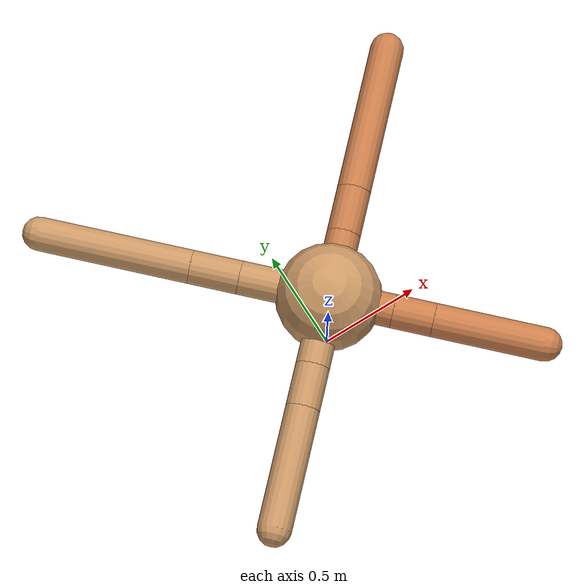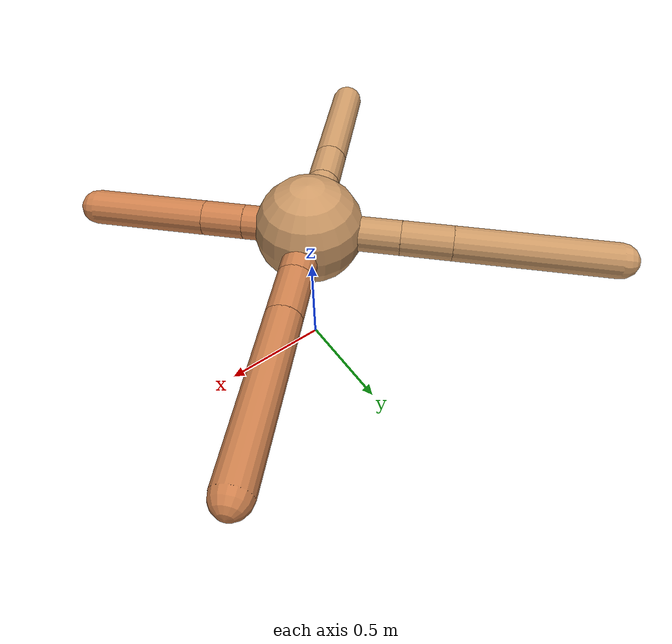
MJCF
<mujoco model="ant">
  <compiler angle="degree" coordinate="local" inertiafromgeom="true" />
  <option integrator="RK4" timestep="0.01" />
  <custom>
    <numeric data="0.0 0.0 0.55 1.0 0.0 0.0 0.0 0.0 1.0 0.0 -1.0 0.0 -1.0 0.0 1.0" name="init_qpos" />
  </custom>
  <default>
    <joint armature="1" damping="1" limited="true" />
    <geom conaffinity="0" condim="3" density="5.0" friction="1.5 0.1 0.1" margin="0.01" rgba="0.8 0.6 0.4 1" />
  </default>
  <worldbody>
    <body name="torso" pos="0 0 0.75">
      <geom name="torso_geom" pos="0 0 0" size="0.25" type="sphere" />

      <body name="front_left_leg" pos="0 0 0">
        <geom fromto="0.0 0.0 0.0 0.21966325045332666 0.21966325045332666 0.0" name="aux_1_geom" size="0.08" type="capsule" rgba=".8 .5 .3 1" />
        <body name="aux_1" pos="0.21966325045332666 0.21966325045332666 0.0">
          <joint axis="0 0 1" name="hip_1" pos="0.0 0.0 0.0" range="-40 40" type="hinge" />
          <geom fromto="0.0 0.0 0.0 0.15656535293633736 0.15656535293633736 0.0" name="left_leg_geom" size="0.08" type="capsule" rgba=".8 .5 .3 1" />
          <body pos="0.15656535293633736 0.15656535293633736 0.0" name="front_left_foot">
            <joint axis="-1 1 0" name="ankle_1" pos="0.0 0.0 0.0" range="30 100" type="hinge" />
            <geom fromto="0.0 0.0 0.0 0.5149887036167186 0.5149887036167186 0.0" name="left_ankle_geom" size="0.08" type="capsule" rgba=".8 .5 .3 1" />
          </body>
        </body>
      </body>
      <body name="front_right_leg" pos="0 0 0">
        <geom fromto="0.0 0.0 0.0 -0.29696939967522756 0.29696939967522756 0.0" name="aux_2_geom" size="0.08" type="capsule" />
        <body name="aux_2" pos="-0.29696939967522756 0.29696939967522756 0.0">
          <joint axis="0 0 1" name="hip_2" pos="0.0 0.0 0.0" range="-40 40" type="hinge" />
          <geom fromto="0.0 0.0 0.0 -0.16491750052035128 0.16491750052035128 0.0" name="right_leg_geom" size="0.08" type="capsule" />
          <body pos="-0.16491750052035128 0.16491750052035128 0.0" name="front_right_foot">
            <joint axis="1 1 0" name="ankle_2" pos="0.0 0.0 0.0" range="-100 -30" type="hinge" />
            <geom fromto="0.0 0.0 0.0 -0.5128219634019601 0.5128219634019601 0.0" name="right_ankle_geom" size="0.08" type="capsule" />
          </body>
        </body>
      </body>
      <body name="left_back_leg" pos="0 0 0">
        <geom fromto="0.0 0.0 0.0 -0.24163367034623914 -0.24163367034623914 0.0" name="aux_3_geom" size="0.08" type="capsule" />
        <body name="aux_3" pos="-0.24163367034623914 -0.24163367034623914 0.0">
          <joint axis="0 0 1" name="hip_3" pos="0.0 0.0 0.0" range="-40 40" type="hinge" />
          <geom fromto="0.0 0.0 0.0 -0.14456108461909103 -0.14456108461909103 0.0" name="back_leg_geom" size="0.08" type="capsule" />
          <body pos="-0.14456108461909103 -0.14456108461909103 0.0" name="left_back_foot">
            <joint axis="-1 1 0" name="ankle_3" pos="0.0 0.0 0.0" range="-100 -30" type="hinge" />
            <geom fromto="0.0 0.0 0.0 -0.4054907148225357 -0.4054907148225357 0.0" name="third_ankle_geom" size="0.08" type="capsule" />
          </body>
        </body>
      </body>
      <body name="right_back_leg" pos="0 0 0">
        <geom fromto="0.0 0.0 0.0 0.21483785986772574 -0.21483785986772574 0.0" name="aux_4_geom" size="0.08" type="capsule" rgba=".8 .5 .3 1" />
        <body name="aux_4" pos="0.21483785986772574 -0.21483785986772574 0.0">
          <joint axis="0 0 1" name="hip_4" pos="0.0 0.0 0.0" range="-40 40" type="hinge" />
          <geom fromto="0.0 0.0 0.0 0.13417621596574955 -0.13417621596574955 0.0" name="rightback_leg_geom" size="0.08" type="capsule" rgba=".8 .5 .3 1" />
          <body pos="0.13417621596574955 -0.13417621596574955 0.0" name="right_back_foot">
            <joint axis="1 1 0" name="ankle_4" pos="0.0 0.0 0.0" range="30 100" type="hinge" />
            <geom fromto="0.0 0.0 0.0 0.36913910058972266 -0.36913910058972266 0.0" name="fourth_ankle_geom" size="0.08" type="capsule" rgba=".8 .5 .3 1" />
          </body>
        </body>
      </body>
    </body>
  </worldbody>
  <actuator>
    <motor ctrllimited="true" ctrlrange="-1.0 1.0" joint="hip_4" gear="150" />
    <motor ctrllimited="true" ctrlrange="-1.0 1.0" joint="ankle_4" gear="150" />
    <motor ctrllimited="true" ctrlrange="-1.0 1.0" joint="hip_1" gear="150" />
    <motor ctrllimited="true" ctrlrange="-1.0 1.0" joint="ankle_1" gear="150" />
    <motor ctrllimited="true" ctrlrange="-1.0 1.0" joint="hip_2" gear="150" />
    <motor ctrllimited="true" ctrlrange="-1.0 1.0" joint="ankle_2" gear="150" />
    <motor ctrllimited="true" ctrlrange="-1.0 1.0" joint="hip_3" gear="150" />
    <motor ctrllimited="true" ctrlrange="-1.0 1.0" joint="ankle_3" gear="150" />
  </actuator>
</mujoco>
